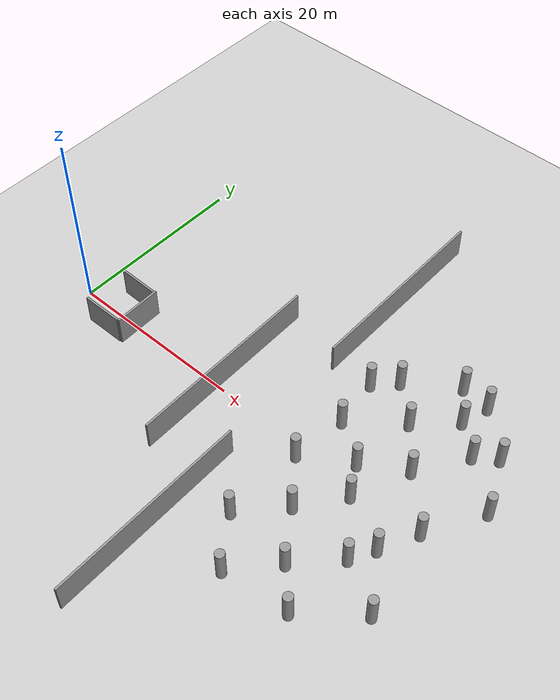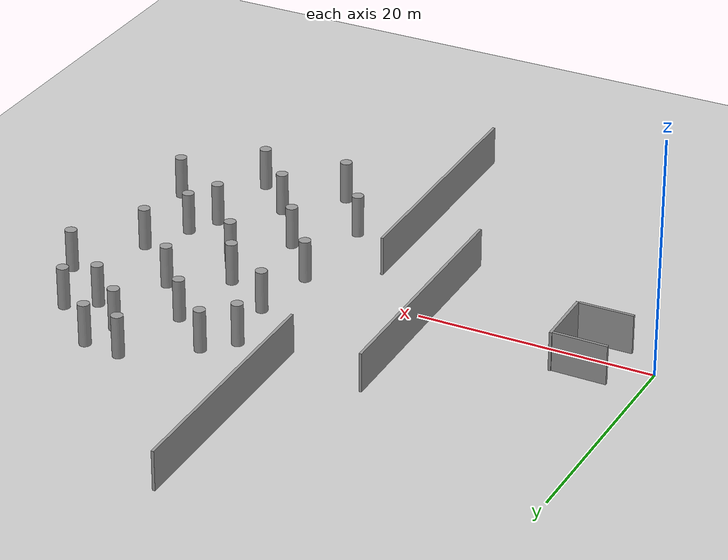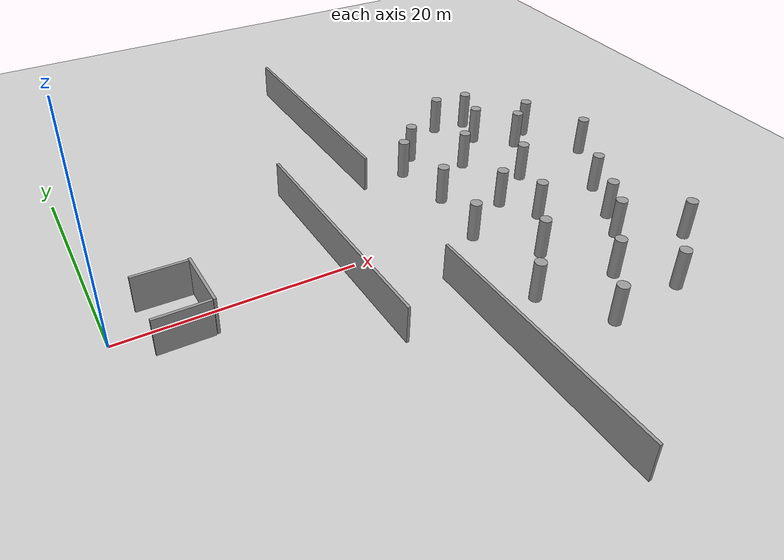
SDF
<sdf version="1.6">
 <world name="default">
  <light name="sun" type="directional">
   <cast_shadows>0</cast_shadows>
   <pose>0 0 10 0 -0 0</pose>
   <diffuse>0.8 0.8 0.8 1</diffuse>
   <specular>0.2 0.2 0.2 1</specular>
   <attenuation>
    <range>1000</range>
    <constant>0.9</constant>
    <linear>0.01</linear>
    <quadratic>0.001</quadratic>
   </attenuation>
   <direction>-0.5 0.1 -0.9</direction>
  </light>
  <model name="ground_plane">
   <static>1</static>
   <link name="link">
    <collision name="collision">
     <geometry><plane><normal>0 0 1</normal><size>200 200</size></plane></geometry>
     <surface><friction><ode><mu>100</mu><mu2>50</mu2></ode></friction></surface>
    </collision>
    <visual name="visual">
     <cast_shadows>0</cast_shadows>
     <geometry><plane><normal>0 0 1</normal><size>200 200</size></plane></geometry>
     <material>
      <script><uri>file://media/materials/scripts/gazebo.material</uri><name>Gazebo/Grey</name></script>
     </material>
    </visual>
   </link>
  </model>
  <physics name="default_physics" default="0" type="ode">
   <max_step_size>0.001</max_step_size>
   <real_time_factor>1</real_time_factor>
   <real_time_update_rate>1000</real_time_update_rate>
  </physics>
  <scene><ambient>0.4 0.4 0.4 1</ambient><background>0.7 0.7 0.7 1</background><shadows>0</shadows></scene>
  <spherical_coordinates>
   <surface_model>EARTH_WGS84</surface_model>
   <latitude_deg>0</latitude_deg>
   <longitude_deg>0</longitude_deg>
   <elevation>0</elevation>
   <heading_deg>0</heading_deg>
  </spherical_coordinates>
  <gravity>0 0 -9.8</gravity>
  <magnetic_field>6e-06 2.3e-05 -4.2e-05</magnetic_field>
  <atmosphere type="adiabatic"/>
  <model name="unit_box_0_0">
   <pose>7.49173 0.286196 1.66667 0.000226 -8e-06 0.019931</pose>
   <link name="link">
    <inertial>
     <mass>1</mass>
     <inertia>
      <ixx>0.166667</ixx>
      <ixy>0</ixy>
      <ixz>0</ixz>
      <iyy>0.166667</iyy>
      <iyz>0</iyz>
      <izz>0.166667</izz>
     </inertia>
    </inertial>
    <collision name="collision"><geometry><box><size>0.237691 5.35849 3.33454</size></box></geometry></collision>
    <visual name="visual">
     <geometry><box><size>0.237691 5.35849 3.33454</size></box></geometry>
     <material>
      <script><name>Gazebo/Grey</name><uri>file://media/materials/scripts/gazebo.material</uri></script>
     </material>
    </visual>
   </link>
  </model>
  <model name="unit_box_0_0_clone">
   <pose>5.03452 2.80662 1.66712 6.7e-05 3e-06 -1.58611</pose>
   <link name="link">
    <inertial>
     <mass>1</mass>
     <inertia>
      <ixx>0.166667</ixx>
      <ixy>0</ixy>
      <ixz>0</ixz>
      <iyy>0.166667</iyy>
      <iyz>0</iyz>
      <izz>0.166667</izz>
     </inertia>
    </inertial>
    <collision name="collision"><geometry><box><size>0.237691 4.56821 3.33454</size></box></geometry></collision>
    <visual name="visual">
     <geometry><box><size>0.237691 4.56821 3.33454</size></box></geometry>
     <material>
      <script><name>Gazebo/Grey</name><uri>file://media/materials/scripts/gazebo.material</uri></script>
     </material>
    </visual>
   </link>
  </model>
  <model name="unit_box_0_0_clone_clone">
   <pose>5.09371 -2.35831 1.66712 6.7e-05 -3e-06 -1.56831</pose>
   <link name="link">
    <inertial>
     <mass>1</mass>
     <inertia>
      <ixx>0.166667</ixx>
      <ixy>0</ixy>
      <ixz>0</ixz>
      <iyy>0.166667</iyy>
      <iyz>0</iyz>
      <izz>0.166667</izz>
     </inertia>
    </inertial>
    <collision name="collision"><geometry><box><size>0.237691 4.56821 3.33454</size></box></geometry></collision>
    <visual name="visual">
     <geometry><box><size>0.237691 4.56821 3.33454</size></box></geometry>
     <material>
      <script><name>Gazebo/Grey</name><uri>file://media/materials/scripts/gazebo.material</uri></script>
     </material>
    </visual>
   </link>
  </model>
  <model name="unit_box_0_0_clone_0">
   <pose>19.0317 1.36843 1.66667 -0.000226 8e-06 0.019874</pose>
   <link name="link">
    <inertial>
     <mass>1</mass>
     <inertia>
      <ixx>0.166667</ixx>
      <ixy>0</ixy>
      <ixz>0</ixz>
      <iyy>0.166667</iyy>
      <iyz>0</iyz>
      <izz>0.166667</izz>
     </inertia>
    </inertial>
    <collision name="collision"><geometry><box><size>0.237691 21.9937 3.33454</size></box></geometry></collision>
    <visual name="visual">
     <geometry><box><size>0.237691 21.9937 3.33454</size></box></geometry>
     <material>
      <script><name>Gazebo/Grey</name><uri>file://media/materials/scripts/gazebo.material</uri></script>
     </material>
    </visual>
   </link>
  </model>
  <model name="unit_box_0_0_clone_0_clone">
   <pose>25.951 20.4173 1.66667 -0.000226 8e-06 0.019874</pose>
   <link name="link">
    <inertial>
     <mass>1</mass>
     <inertia>
      <ixx>0.166667</ixx>
      <ixy>0</ixy>
      <ixz>0</ixz>
      <iyy>0.166667</iyy>
      <iyz>0</iyz>
      <izz>0.166667</izz>
     </inertia>
    </inertial>
    <collision name="collision"><geometry><box><size>0.237691 21.9937 3.33454</size></box></geometry></collision>
    <visual name="visual">
     <geometry><box><size>0.237691 21.9937 3.33454</size></box></geometry>
     <material>
      <script><name>Gazebo/Grey</name><uri>file://media/materials/scripts/gazebo.material</uri></script>
     </material>
    </visual>
   </link>
  </model>
  <model name="unit_box_0_0_clone_0_clone_0">
   <pose>25.8091 -15.679 1.66667 -0.000226 8e-06 0.019874</pose>
   <link name="link">
    <inertial>
     <mass>1</mass>
     <inertia>
      <ixx>0.166667</ixx>
      <ixy>0</ixy>
      <ixz>0</ixz>
      <iyy>0.166667</iyy>
      <iyz>0</iyz>
      <izz>0.166667</izz>
     </inertia>
    </inertial>
    <collision name="collision"><geometry><box><size>0.237691 21.9937 3.33454</size></box></geometry></collision>
    <visual name="visual">
     <geometry><box><size>0.237691 21.9937 3.33454</size></box></geometry>
     <material>
      <script><name>Gazebo/Grey</name><uri>file://media/materials/scripts/gazebo.material</uri></script>
     </material>
    </visual>
   </link>
  </model>
  <model name="unit_cylinder_0">
   <pose>36.5123 8.86063 0.5 0 -0 0</pose>
   <link name="link">
    <inertial>
     <mass>1</mass>
     <inertia><ixx>0.145833</ixx><ixy>0</ixy><ixz>0</ixz><iyy>0.145833</iyy><iyz>0</iyz><izz>0.125</izz></inertia>
    </inertial>
    <collision name="collision">
     <geometry><cylinder><radius>0.5</radius><length>6.03341</length></cylinder></geometry>
    </collision>
    <visual name="visual">
     <geometry><cylinder><radius>0.5</radius><length>6.03341</length></cylinder></geometry>
     <material>
      <script><name>Gazebo/Grey</name><uri>file://media/materials/scripts/gazebo.material</uri></script>
     </material>
    </visual>
   </link>
  </model>
  <model name="unit_cylinder_0_clone">
   <pose>35.7139 1.81409 0.5 0 -0 0</pose>
   <link name="link">
    <inertial>
     <mass>1</mass>
     <inertia><ixx>0.145833</ixx><ixy>0</ixy><ixz>0</ixz><iyy>0.145833</iyy><iyz>0</iyz><izz>0.125</izz></inertia>
    </inertial>
    <collision name="collision">
     <geometry><cylinder><radius>0.5</radius><length>6.03342</length></cylinder></geometry>
    </collision>
    <visual name="visual">
     <geometry><cylinder><radius>0.5</radius><length>6.03342</length></cylinder></geometry>
     <material>
      <script><name>Gazebo/Grey</name><uri>file://media/materials/scripts/gazebo.material</uri></script>
     </material>
    </visual>
   </link>
  </model>
  <model name="unit_cylinder_0_clone_0">
   <pose>34.3331 -5.78751 0.5 0 -0 0</pose>
   <link name="link">
    <inertial>
     <mass>1</mass>
     <inertia><ixx>0.145833</ixx><ixy>0</ixy><ixz>0</ixz><iyy>0.145833</iyy><iyz>0</iyz><izz>0.125</izz></inertia>
    </inertial>
    <collision name="collision">
     <geometry><cylinder><radius>0.5</radius><length>6.03342</length></cylinder></geometry>
    </collision>
    <visual name="visual">
     <geometry><cylinder><radius>0.5</radius><length>6.03342</length></cylinder></geometry>
     <material>
      <script><name>Gazebo/Grey</name><uri>file://media/materials/scripts/gazebo.material</uri></script>
     </material>
    </visual>
   </link>
  </model>
  <model name="unit_cylinder_0_clone_1">
   <pose>31.4202 4.72771 0.5 0 -0 0</pose>
   <link name="link">
    <inertial>
     <mass>1</mass>
     <inertia><ixx>0.145833</ixx><ixy>0</ixy><ixz>0</ixz><iyy>0.145833</iyy><iyz>0</iyz><izz>0.125</izz></inertia>
    </inertial>
    <collision name="collision">
     <geometry><cylinder><radius>0.5</radius><length>6.03342</length></cylinder></geometry>
    </collision>
    <visual name="visual">
     <geometry><cylinder><radius>0.5</radius><length>6.03342</length></cylinder></geometry>
     <material>
      <script><name>Gazebo/Grey</name><uri>file://media/materials/scripts/gazebo.material</uri></script>
     </material>
    </visual>
   </link>
  </model>
  <model name="unit_cylinder_0_clone_2">
   <pose>40.0951 4.60307 0.5 0 -0 0</pose>
   <link name="link">
    <inertial>
     <mass>1</mass>
     <inertia><ixx>0.145833</ixx><ixy>0</ixy><ixz>0</ixz><iyy>0.145833</iyy><iyz>0</iyz><izz>0.125</izz></inertia>
    </inertial>
    <collision name="collision">
     <geometry><cylinder><radius>0.5</radius><length>6.03342</length></cylinder></geometry>
    </collision>
    <visual name="visual">
     <geometry><cylinder><radius>0.5</radius><length>6.03342</length></cylinder></geometry>
     <material>
      <script><name>Gazebo/Grey</name><uri>file://media/materials/scripts/gazebo.material</uri></script>
     </material>
    </visual>
   </link>
  </model>
  <model name="unit_cylinder_0_clone_3">
   <pose>43.0121 -4.07604 0.5 0 -0 0</pose>
   <link name="link">
    <inertial>
     <mass>1</mass>
     <inertia><ixx>0.145833</ixx><ixy>0</ixy><ixz>0</ixz><iyy>0.145833</iyy><iyz>0</iyz><izz>0.125</izz></inertia>
    </inertial>
    <collision name="collision">
     <geometry><cylinder><radius>0.5</radius><length>6.03342</length></cylinder></geometry>
    </collision>
    <visual name="visual">
     <geometry><cylinder><radius>0.5</radius><length>6.03342</length></cylinder></geometry>
     <material>
      <script><name>Gazebo/Grey</name><uri>file://media/materials/scripts/gazebo.material</uri></script>
     </material>
    </visual>
   </link>
  </model>
  <model name="unit_cylinder_0_clone_4">
   <pose>44.8773 -0.138697 0.5 0 -0 0</pose>
   <link name="link">
    <inertial>
     <mass>1</mass>
     <inertia><ixx>0.145833</ixx><ixy>0</ixy><ixz>0</ixz><iyy>0.145833</iyy><iyz>0</iyz><izz>0.125</izz></inertia>
    </inertial>
    <collision name="collision">
     <geometry><cylinder><radius>0.5</radius><length>6.03342</length></cylinder></geometry>
    </collision>
    <visual name="visual">
     <geometry><cylinder><radius>0.5</radius><length>6.03342</length></cylinder></geometry>
     <material>
      <script><name>Gazebo/Grey</name><uri>file://media/materials/scripts/gazebo.material</uri></script>
     </material>
    </visual>
   </link>
  </model>
  <model name="unit_cylinder_0_clone_5">
   <pose>30.7255 -1.25762 0.5 0 -0 0</pose>
   <link name="link">
    <inertial>
     <mass>1</mass>
     <inertia><ixx>0.145833</ixx><ixy>0</ixy><ixz>0</ixz><iyy>0.145833</iyy><iyz>0</iyz><izz>0.125</izz></inertia>
    </inertial>
    <collision name="collision">
     <geometry><cylinder><radius>0.5</radius><length>6.03342</length></cylinder></geometry>
    </collision>
    <visual name="visual">
     <geometry><cylinder><radius>0.5</radius><length>6.03342</length></cylinder></geometry>
     <material>
      <script><name>Gazebo/Grey</name><uri>file://media/materials/scripts/gazebo.material</uri></script>
     </material>
    </visual>
   </link>
  </model>
  <model name="unit_cylinder_0_clone_6">
   <pose>41.6644 -6.5691 0.5 0 -0 0</pose>
   <link name="link">
    <inertial>
     <mass>1</mass>
     <inertia><ixx>0.145833</ixx><ixy>0</ixy><ixz>0</ixz><iyy>0.145833</iyy><iyz>0</iyz><izz>0.125</izz></inertia>
    </inertial>
    <collision name="collision">
     <geometry><cylinder><radius>0.5</radius><length>6.03342</length></cylinder></geometry>
    </collision>
    <visual name="visual">
     <geometry><cylinder><radius>0.5</radius><length>6.03342</length></cylinder></geometry>
     <material>
      <script><name>Gazebo/Grey</name><uri>file://media/materials/scripts/gazebo.material</uri></script>
     </material>
    </visual>
   </link>
  </model>
  <model name="unit_cylinder_0_clone_7">
   <pose>37.5721 -1.32123 0.5 0 -0 0</pose>
   <link name="link">
    <inertial>
     <mass>1</mass>
     <inertia><ixx>0.145833</ixx><ixy>0</ixy><ixz>0</ixz><iyy>0.145833</iyy><iyz>0</iyz><izz>0.125</izz></inertia>
    </inertial>
    <collision name="collision">
     <geometry><cylinder><radius>0.5</radius><length>6.03342</length></cylinder></geometry>
    </collision>
    <visual name="visual">
     <geometry><cylinder><radius>0.5</radius><length>6.03342</length></cylinder></geometry>
     <material>
      <script><name>Gazebo/Grey</name><uri>file://media/materials/scripts/gazebo.material</uri></script>
     </material>
    </visual>
   </link>
  </model>
  <model name="unit_cylinder_0_clone_8">
   <pose>45.5642 11.3365 0.5 0 -0 0</pose>
   <link name="link">
    <inertial>
     <mass>1</mass>
     <inertia><ixx>0.145833</ixx><ixy>0</ixy><ixz>0</ixz><iyy>0.145833</iyy><iyz>0</iyz><izz>0.125</izz></inertia>
    </inertial>
    <collision name="collision">
     <geometry><cylinder><radius>0.5</radius><length>6.03342</length></cylinder></geometry>
    </collision>
    <visual name="visual">
     <geometry><cylinder><radius>0.5</radius><length>6.03342</length></cylinder></geometry>
     <material>
      <script><name>Gazebo/Grey</name><uri>file://media/materials/scripts/gazebo.material</uri></script>
     </material>
    </visual>
   </link>
  </model>
  <model name="unit_cylinder_0_clone_9">
   <pose>43.3589 9.77113 0.5 0 -0 0</pose>
   <link name="link">
    <inertial>
     <mass>1</mass>
     <inertia><ixx>0.145833</ixx><ixy>0</ixy><ixz>0</ixz><iyy>0.145833</iyy><iyz>0</iyz><izz>0.125</izz></inertia>
    </inertial>
    <collision name="collision">
     <geometry><cylinder><radius>0.5</radius><length>6.03342</length></cylinder></geometry>
    </collision>
    <visual name="visual">
     <geometry><cylinder><radius>0.5</radius><length>6.03342</length></cylinder></geometry>
     <material>
      <script><name>Gazebo/Grey</name><uri>file://media/materials/scripts/gazebo.material</uri></script>
     </material>
    </visual>
   </link>
  </model>
  <model name="unit_cylinder_0_clone_10">
   <pose>48.2101 5.73588 0.5 0 -0 0</pose>
   <link name="link">
    <inertial>
     <mass>1</mass>
     <inertia><ixx>0.145833</ixx><ixy>0</ixy><ixz>0</ixz><iyy>0.145833</iyy><iyz>0</iyz><izz>0.125</izz></inertia>
    </inertial>
    <collision name="collision">
     <geometry><cylinder><radius>0.5</radius><length>6.03342</length></cylinder></geometry>
    </collision>
    <visual name="visual">
     <geometry><cylinder><radius>0.5</radius><length>6.03342</length></cylinder></geometry>
     <material>
      <script><name>Gazebo/Grey</name><uri>file://media/materials/scripts/gazebo.material</uri></script>
     </material>
    </visual>
   </link>
  </model>
  <model name="unit_cylinder_0_clone_11">
   <pose>37.8195 -10.6225 0.5 0 -0 0</pose>
   <link name="link">
    <inertial>
     <mass>1</mass>
     <inertia><ixx>0.145833</ixx><ixy>0</ixy><ixz>0</ixz><iyy>0.145833</iyy><iyz>0</iyz><izz>0.125</izz></inertia>
    </inertial>
    <collision name="collision">
     <geometry><cylinder><radius>0.5</radius><length>6.03342</length></cylinder></geometry>
    </collision>
    <visual name="visual">
     <geometry><cylinder><radius>0.5</radius><length>6.03342</length></cylinder></geometry>
     <material>
      <script><name>Gazebo/Grey</name><uri>file://media/materials/scripts/gazebo.material</uri></script>
     </material>
    </visual>
   </link>
  </model>
  <model name="unit_cylinder_0_clone_12">
   <pose>32.6997 12.3147 0.5 0 -0 0</pose>
   <link name="link">
    <inertial>
     <mass>1</mass>
     <inertia><ixx>0.145833</ixx><ixy>0</ixy><ixz>0</ixz><iyy>0.145833</iyy><iyz>0</iyz><izz>0.125</izz></inertia>
    </inertial>
    <collision name="collision">
     <geometry><cylinder><radius>0.5</radius><length>6.03342</length></cylinder></geometry>
    </collision>
    <visual name="visual">
     <geometry><cylinder><radius>0.5</radius><length>6.03342</length></cylinder></geometry>
     <material>
      <script><name>Gazebo/Grey</name><uri>file://media/materials/scripts/gazebo.material</uri></script>
     </material>
    </visual>
   </link>
  </model>
  <model name="unit_cylinder_0_clone_13">
   <pose>30.5887 10.1395 0.5 0 -0 0</pose>
   <link name="link">
    <inertial>
     <mass>1</mass>
     <inertia><ixx>0.145833</ixx><ixy>0</ixy><ixz>0</ixz><iyy>0.145833</iyy><iyz>0</iyz><izz>0.125</izz></inertia>
    </inertial>
    <collision name="collision">
     <geometry><cylinder><radius>0.5</radius><length>6.03342</length></cylinder></geometry>
    </collision>
    <visual name="visual">
     <geometry><cylinder><radius>0.5</radius><length>6.03342</length></cylinder></geometry>
     <material>
      <script><name>Gazebo/Grey</name><uri>file://media/materials/scripts/gazebo.material</uri></script>
     </material>
    </visual>
   </link>
  </model>
  <model name="unit_cylinder_0_clone_14">
   <pose>30.4732 -9.99792 0.5 0 -0 0</pose>
   <link name="link">
    <inertial>
     <mass>1</mass>
     <inertia><ixx>0.145833</ixx><ixy>0</ixy><ixz>0</ixz><iyy>0.145833</iyy><iyz>0</iyz><izz>0.125</izz></inertia>
    </inertial>
    <collision name="collision">
     <geometry><cylinder><radius>0.5</radius><length>6.03342</length></cylinder></geometry>
    </collision>
    <visual name="visual">
     <geometry><cylinder><radius>0.5</radius><length>6.03342</length></cylinder></geometry>
     <material>
      <script><name>Gazebo/Grey</name><uri>file://media/materials/scripts/gazebo.material</uri></script>
     </material>
    </visual>
   </link>
  </model>
  <model name="unit_cylinder_0_clone_15">
   <pose>46.7352 -9.39949 0.5 0 -0 0</pose>
   <link name="link">
    <inertial>
     <mass>1</mass>
     <inertia><ixx>0.145833</ixx><ixy>0</ixy><ixz>0</ixz><iyy>0.145833</iyy><iyz>0</iyz><izz>0.125</izz></inertia>
    </inertial>
    <collision name="collision">
     <geometry><cylinder><radius>0.5</radius><length>6.03342</length></cylinder></geometry>
    </collision>
    <visual name="visual">
     <geometry><cylinder><radius>0.5</radius><length>6.03342</length></cylinder></geometry>
     <material>
      <script><name>Gazebo/Grey</name><uri>file://media/materials/scripts/gazebo.material</uri></script>
     </material>
    </visual>
   </link>
  </model>
  <model name="unit_cylinder_0_clone_16">
   <pose>37.8552 15.9705 0.5 0 -0 0</pose>
   <link name="link">
    <inertial>
     <mass>1</mass>
     <inertia><ixx>0.145833</ixx><ixy>0</ixy><ixz>0</ixz><iyy>0.145833</iyy><iyz>0</iyz><izz>0.125</izz></inertia>
    </inertial>
    <collision name="collision">
     <geometry><cylinder><radius>0.5</radius><length>6.03342</length></cylinder></geometry>
    </collision>
    <visual name="visual">
     <geometry><cylinder><radius>0.5</radius><length>6.03342</length></cylinder></geometry>
     <material>
      <script><name>Gazebo/Grey</name><uri>file://media/materials/scripts/gazebo.material</uri></script>
     </material>
    </visual>
   </link>
  </model>
  <model name="unit_cylinder_0_clone_17">
   <pose>41.0775 15.5736 0.5 0 -0 0</pose>
   <link name="link">
    <inertial>
     <mass>1</mass>
     <inertia><ixx>0.145833</ixx><ixy>0</ixy><ixz>0</ixz><iyy>0.145833</iyy><iyz>0</iyz><izz>0.125</izz></inertia>
    </inertial>
    <collision name="collision">
     <geometry><cylinder><radius>0.5</radius><length>6.03342</length></cylinder></geometry>
    </collision>
    <visual name="visual">
     <geometry><cylinder><radius>0.5</radius><length>6.03342</length></cylinder></geometry>
     <material>
      <script><name>Gazebo/Grey</name><uri>file://media/materials/scripts/gazebo.material</uri></script>
     </material>
    </visual>
   </link>
  </model>
  <model name="unit_cylinder_0_clone_18">
   <pose>34.0572 -14.8992 0.5 0 -0 0</pose>
   <link name="link">
    <inertial>
     <mass>1</mass>
     <inertia><ixx>0.145833</ixx><ixy>0</ixy><ixz>0</ixz><iyy>0.145833</iyy><iyz>0</iyz><izz>0.125</izz></inertia>
    </inertial>
    <collision name="collision">
     <geometry><cylinder><radius>0.5</radius><length>6.03342</length></cylinder></geometry>
    </collision>
    <visual name="visual">
     <geometry><cylinder><radius>0.5</radius><length>6.03342</length></cylinder></geometry>
     <material>
      <script><name>Gazebo/Grey</name><uri>file://media/materials/scripts/gazebo.material</uri></script>
     </material>
    </visual>
   </link>
  </model>
  <model name="unit_cylinder_0_clone_19">
   <pose>41.2 -13.9942 0.5 0 -0 0</pose>
   <link name="link">
    <inertial>
     <mass>1</mass>
     <inertia><ixx>0.145833</ixx><ixy>0</ixy><ixz>0</ixz><iyy>0.145833</iyy><iyz>0</iyz><izz>0.125</izz></inertia>
    </inertial>
    <collision name="collision">
     <geometry><cylinder><radius>0.5</radius><length>6.03342</length></cylinder></geometry>
    </collision>
    <visual name="visual">
     <geometry><cylinder><radius>0.5</radius><length>6.03342</length></cylinder></geometry>
     <material>
      <script><name>Gazebo/Grey</name><uri>file://media/materials/scripts/gazebo.material</uri></script>
     </material>
    </visual>
   </link>
  </model>
  <model name="unit_cylinder_0_clone_20">
   <pose>40.2464 12.4856 0.5 0 -0 0</pose>
   <link name="link">
    <inertial>
     <mass>1</mass>
     <inertia><ixx>0.145833</ixx><ixy>0</ixy><ixz>0</ixz><iyy>0.145833</iyy><iyz>0</iyz><izz>0.125</izz></inertia>
    </inertial>
    <collision name="collision">
     <geometry><cylinder><radius>0.5</radius><length>6.03342</length></cylinder></geometry>
    </collision>
    <visual name="visual">
     <geometry><cylinder><radius>0.5</radius><length>6.03342</length></cylinder></geometry>
     <material>
      <script><name>Gazebo/Grey</name><uri>file://media/materials/scripts/gazebo.material</uri></script>
     </material>
    </visual>
   </link>
  </model>
 </world>
</sdf>
